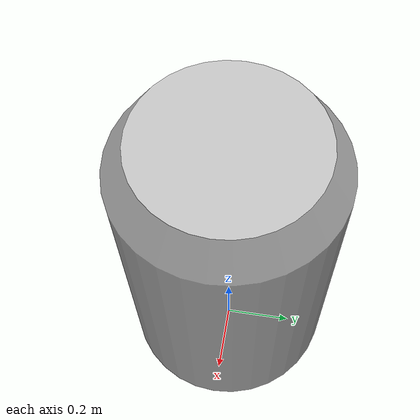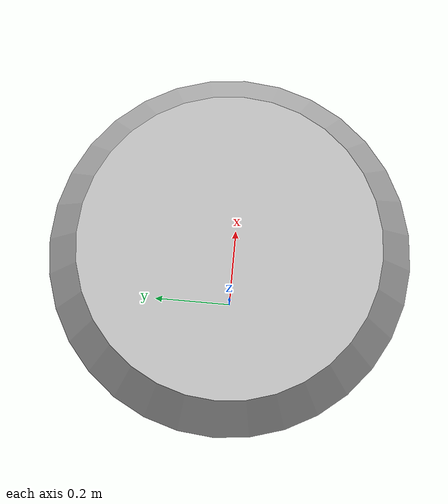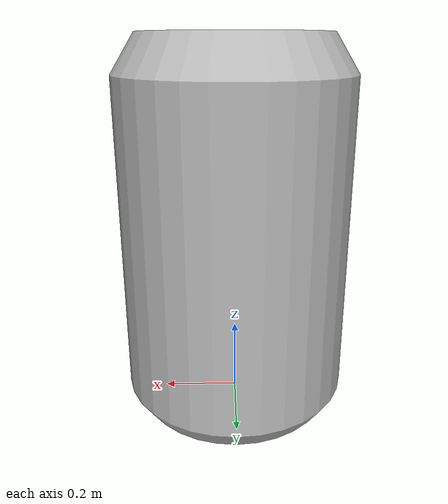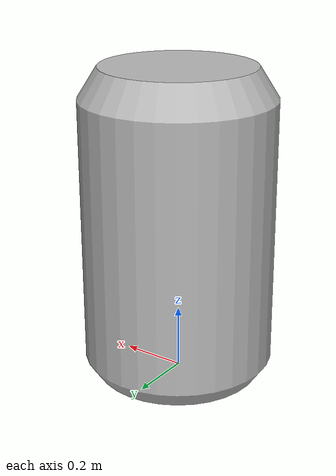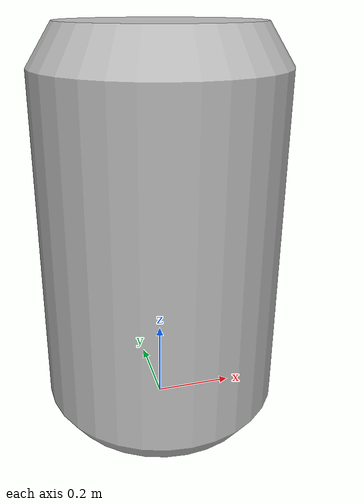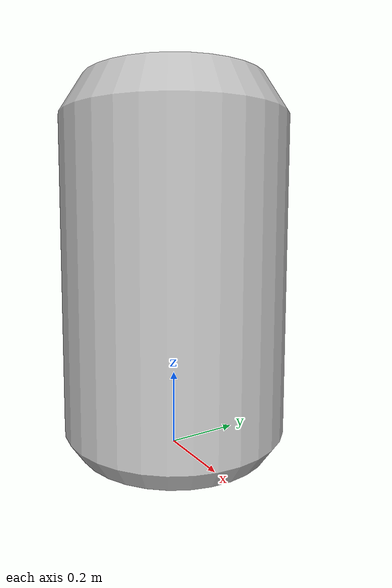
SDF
<?xml version="1.0" encoding="UTF-8" ?>
<sdf version="1.4">
  <!--Generated by blend2world.py-->
    <model name="barel_220l">
      <pose>0.0 0.0 0.0  0.0 0.0 0.0</pose>
      <static>true</static>
      <link name="body">
        <collision name="collision">
          <geometry>
            <mesh>
              <uri>model://barrel_220l/meshes/barrel_220l.dae</uri>
              <scale>1 1 1</scale>
            </mesh>
          </geometry>
        </collision>
        <visual name="visual">
          <geometry>
            <mesh>
              <uri>model://barrel_220l/meshes/barrel_220l.dae</uri>
              <scale>1 1 1</scale>
            </mesh>
          </geometry>
	  <material>
            <script>
              <uri>model://barrel_220l/textures/barrel_220l.jpg</uri>
            </script>
          </material>
        </visual>
      </link>
    </model>
</sdf>
